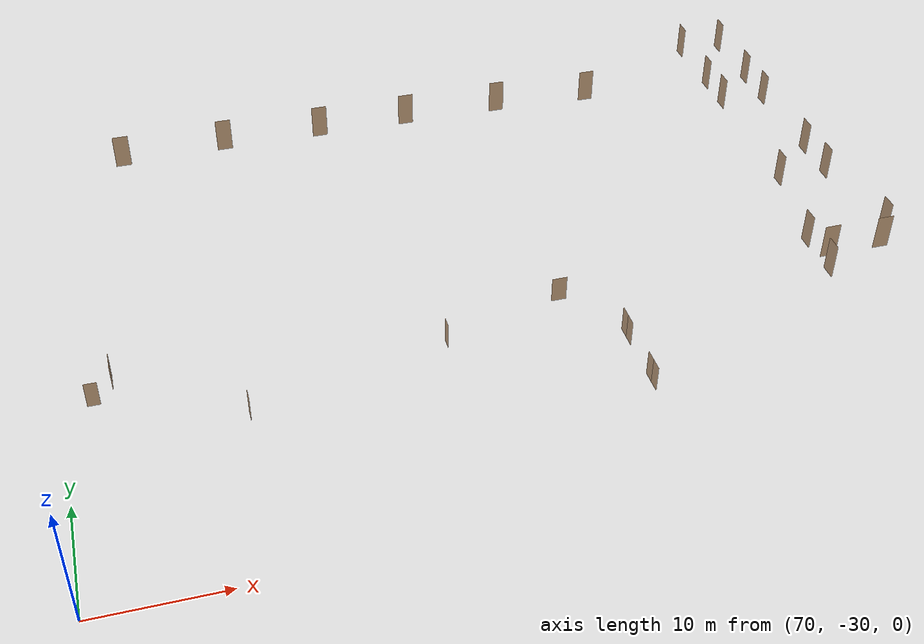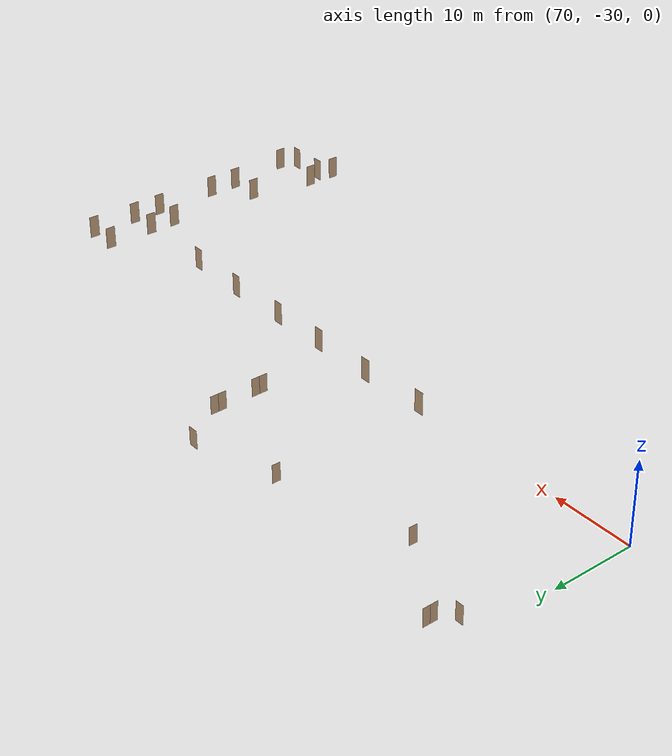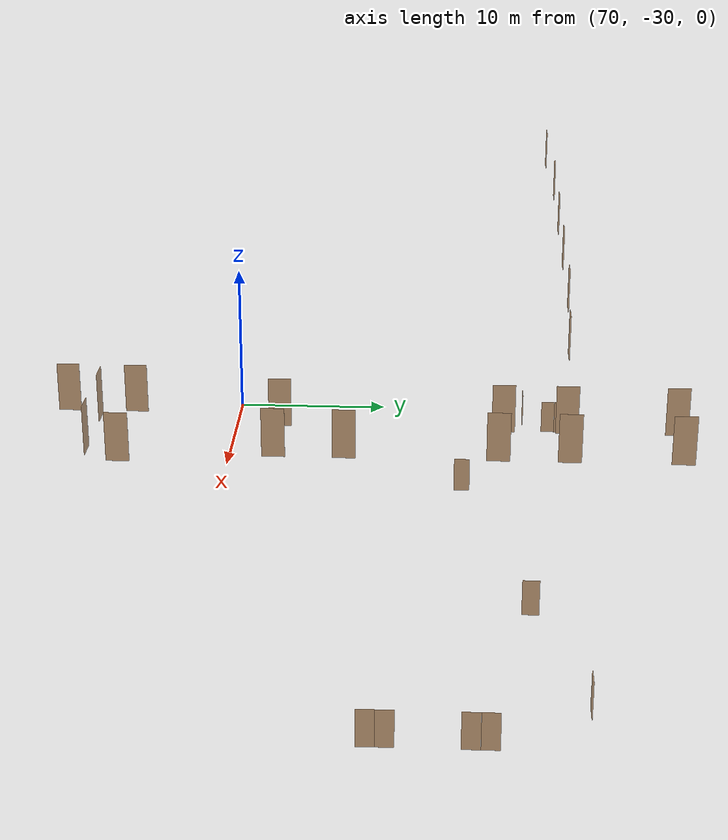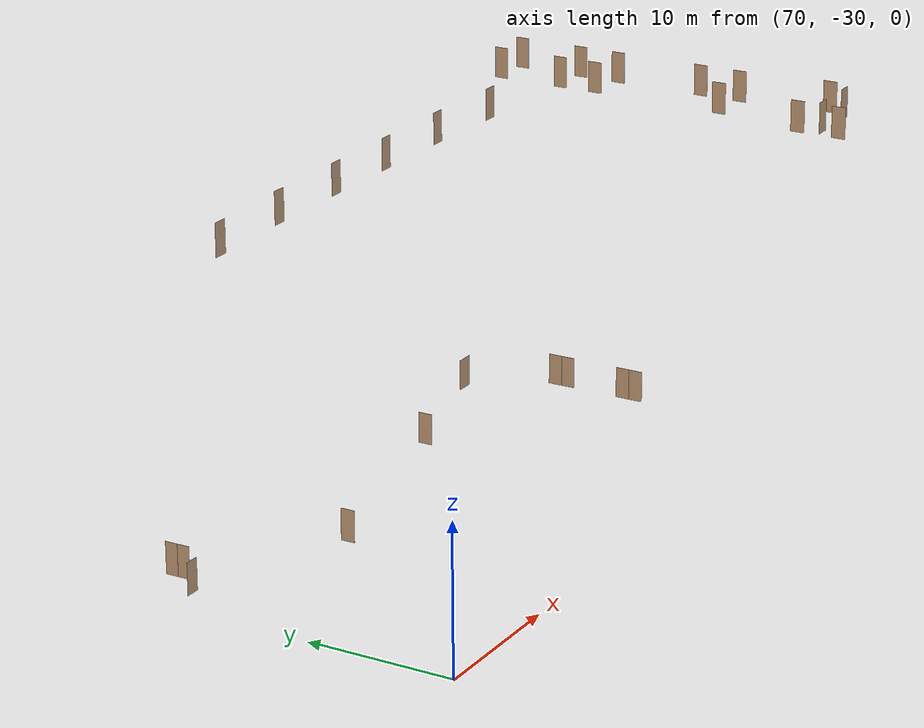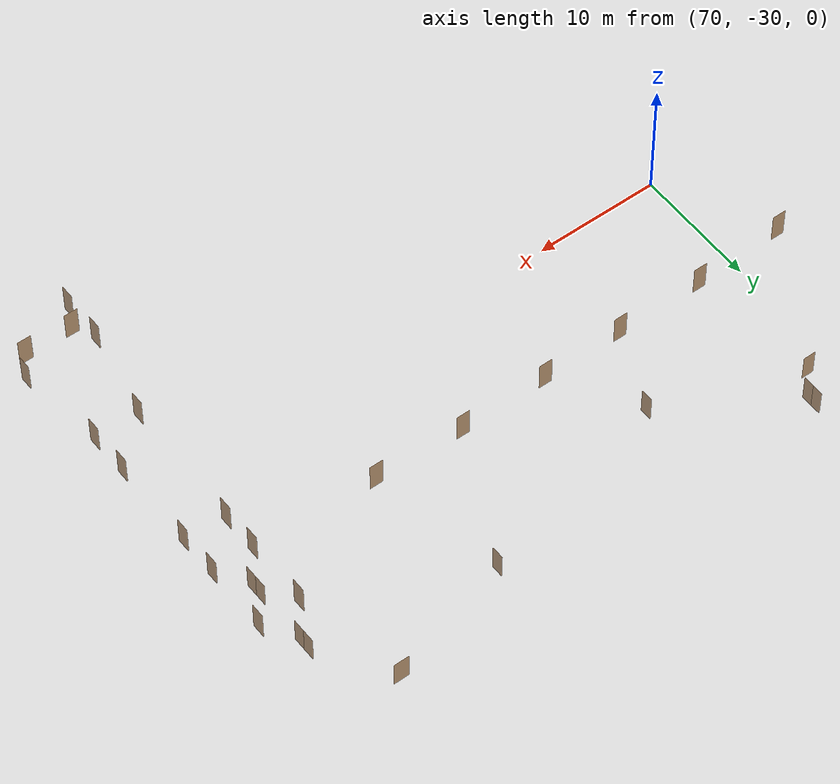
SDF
<sdf version="1.7">
 <world name="sim_world">
  <model name="l1_door6">
   <pose>72.2 -10.25 0.0 0 0 3.141592653589793</pose>
   <plugin name="door" filename="libdoor.so">
    <v_max_door>0.5</v_max_door>
    <a_max_door>0.3</a_max_door>
    <a_nom_door>0.15</a_nom_door>
    <dx_min_door>0.01</dx_min_door>
    <f_max_door>500.0</f_max_door>
    <door name="l1_door6" type="SwingDoor" left_joint_name="empty_joint" right_joint_name="right_joint"/>
   </plugin>
   <link name="right">
    <pose>0 0 1.11 0 0 0</pose>
    <visual name="right_visual">
     <geometry><box><size>0.99 0.03 2.2</size></box></geometry>
     <material>
      <ambient>0.5 0.25 0 0.6</ambient>
      <diffuse>0.5 0.25 0 0.6</diffuse>
      <pbr><metal><metalness>0.0</metalness></metal></pbr>
     </material>
    </visual>
    <collision name="right_collision">
     <geometry><box><size>0.99 0.03 2.2</size></box></geometry>
     <surface><contact><collide_bitmask>0x02</collide_bitmask></contact></surface>
    </collision>
    <inertial>
     <mass>50.0</mass>
     <inertia><ixx>20.17041666666667</ixx><iyy>24.250416666666673</iyy><izz>4.0875</izz></inertia>
    </inertial>
   </link>
   <joint name="right_joint" type="revolute">
    <parent>world</parent>
    <child>right</child>
    <axis><xyz>0 0 1</xyz><limit><lower>0</lower><upper>1.57</upper></limit></axis>
    <pose>0.5 0 0 0 0 0</pose>
   </joint>
  </model>
  <model name="l1_door7">
   <pose>73.7 -8.125 0.0 0 0 -1.5707963267948966</pose>
   <link name="right">
    <pose>-0.4375 0 1.11 0 0 0</pose>
    <visual name="right_visual">
     <geometry><box><size>0.865 0.03 2.2</size></box></geometry>
     <material>
      <ambient>0.5 0.25 0 0.6</ambient>
      <diffuse>0.5 0.25 0 0.6</diffuse>
      <pbr><metal><metalness>0.0</metalness></metal></pbr>
     </material>
    </visual>
    <collision name="right_collision">
     <geometry><box><size>0.865 0.03 2.2</size></box></geometry>
     <surface><contact><collide_bitmask>0x02</collide_bitmask></contact></surface>
    </collision>
    <inertial>
     <mass>50.0</mass>
     <inertia><ixx>20.17041666666667</ixx><iyy>23.284270833333338</iyy><izz>3.121354166666667</izz></inertia>
    </inertial>
   </link>
   <joint name="right_joint" type="revolute">
    <parent>world</parent>
    <child>right</child>
    <axis><xyz>0 0 1</xyz><limit><lower>0</lower><upper>1.57</upper></limit></axis>
    <pose>-0.4375 0 0 0 0 0</pose>
   </joint>
   <link name="left">
    <pose>0.4375 0 1.11 0 0 0</pose>
    <visual name="left_visual">
     <geometry><box><size>0.865 0.03 2.2</size></box></geometry>
     <material>
      <ambient>0.5 0.25 0 0.6</ambient>
      <diffuse>0.5 0.25 0 0.6</diffuse>
      <pbr><metal><metalness>0.0</metalness></metal></pbr>
     </material>
    </visual>
    <collision name="left_collision">
     <geometry><box><size>0.865 0.03 2.2</size></box></geometry>
     <surface><contact><collide_bitmask>0x02</collide_bitmask></contact></surface>
    </collision>
    <inertial>
     <mass>50.0</mass>
     <inertia><ixx>20.17041666666667</ixx><iyy>23.284270833333338</iyy><izz>3.121354166666667</izz></inertia>
    </inertial>
   </link>
   <joint name="left_joint" type="revolute">
    <parent>world</parent>
    <child>left</child>
    <axis><xyz>0 0 1</xyz><limit><lower>-1.57</lower><upper>0</upper></limit></axis>
    <pose>0.4375 0 0 0 0 0</pose>
   </joint>
   <plugin name="door" filename="libdoor.so">
    <v_max_door>0.5</v_max_door>
    <a_max_door>0.3</a_max_door>
    <a_nom_door>0.15</a_nom_door>
    <dx_min_door>0.01</dx_min_door>
    <f_max_door>500.0</f_max_door>
    <door name="l1_door7" type="DoubleSwingDoor" left_joint_name="left_joint" right_joint_name="right_joint"/>
   </plugin>
  </model>
  <model name="l1_door3">
   <pose>109.47500000000001 -7.5 0.0 0 0 0.0</pose>
   <plugin name="door" filename="libdoor.so">
    <v_max_door>0.5</v_max_door>
    <a_max_door>0.3</a_max_door>
    <a_nom_door>0.15</a_nom_door>
    <dx_min_door>0.01</dx_min_door>
    <f_max_door>500.0</f_max_door>
    <door name="l1_door3" type="SwingDoor" left_joint_name="left_joint" right_joint_name="empty_joint"/>
   </plugin>
   <link name="left">
    <pose>0 0 1.11 0 0 0</pose>
    <visual name="left_visual">
     <geometry><box><size>1.24 0.03 2.2</size></box></geometry>
     <material>
      <ambient>0.5 0.25 0 0.6</ambient>
      <diffuse>0.5 0.25 0 0.6</diffuse>
      <pbr><metal><metalness>0.0</metalness></metal></pbr>
     </material>
    </visual>
    <collision name="left_collision">
     <geometry><box><size>1.24 0.03 2.2</size></box></geometry>
     <surface><contact><collide_bitmask>0x02</collide_bitmask></contact></surface>
    </collision>
    <inertial>
     <mass>50.0</mass>
     <inertia><ixx>20.17041666666667</ixx><iyy>26.57333333333334</iyy><izz>6.410416666666667</izz></inertia>
    </inertial>
   </link>
   <joint name="left_joint" type="revolute">
    <parent>world</parent>
    <child>left</child>
    <axis><xyz>0 0 1</xyz><limit><lower>-1.57</lower><upper>0</upper></limit></axis>
    <pose>0.625 0 0 0 0 0</pose>
   </joint>
  </model>
  <model name="entrance_2">
   <pose>113.15 -13.25 0.0 0 0 1.5707963267948966</pose>
   <link name="left">
    <pose>-0.5 0 1.11 0 0 0</pose>
    <visual name="left_visual">
     <geometry><box><size>0.99 0.03 2.2</size></box></geometry>
     <material>
      <ambient>0.5 0.25 0 0.6</ambient>
      <diffuse>0.5 0.25 0 0.6</diffuse>
      <pbr><metal><metalness>0.0</metalness></metal></pbr>
     </material>
    </visual>
    <collision name="left_collision">
     <geometry><box><size>0.99 0.03 2.2</size></box></geometry>
     <surface><contact><collide_bitmask>0x02</collide_bitmask></contact></surface>
    </collision>
    <inertial>
     <mass>50.0</mass>
     <inertia><ixx>20.17041666666667</ixx><iyy>24.250416666666673</iyy><izz>4.0875</izz></inertia>
    </inertial>
   </link>
   <joint name="left_joint" type="prismatic">
    <parent>world</parent>
    <child>left</child>
    <axis><xyz>1 0 0</xyz><limit><lower>-1.0</lower><upper>0.0</upper><effort>500.0</effort></limit></axis>
   </joint>
   <link name="right">
    <pose>0.5 0 1.11 0 0 0</pose>
    <visual name="right_visual">
     <geometry><box><size>0.99 0.03 2.2</size></box></geometry>
     <material>
      <ambient>0.5 0.25 0 0.6</ambient>
      <diffuse>0.5 0.25 0 0.6</diffuse>
      <pbr><metal><metalness>0.0</metalness></metal></pbr>
     </material>
    </visual>
    <collision name="right_collision">
     <geometry><box><size>0.99 0.03 2.2</size></box></geometry>
     <surface><contact><collide_bitmask>0x02</collide_bitmask></contact></surface>
    </collision>
    <inertial>
     <mass>50.0</mass>
     <inertia><ixx>20.17041666666667</ixx><iyy>24.250416666666673</iyy><izz>4.0875</izz></inertia>
    </inertial>
   </link>
   <joint name="right_joint" type="prismatic">
    <parent>world</parent>
    <child>right</child>
    <axis><xyz>1 0 0</xyz><limit><lower>0.0</lower><upper>1.0</upper><effort>500.0</effort></limit></axis>
   </joint>
   <plugin name="door" filename="libdoor.so">
    <v_max_door>0.2</v_max_door>
    <a_max_door>0.2</a_max_door>
    <a_nom_door>0.08</a_nom_door>
    <dx_min_door>0.001</dx_min_door>
    <f_max_door>100.0</f_max_door>
    <door name="entrance_2" type="DoubleSlidingDoor" left_joint_name="left_joint" right_joint_name="right_joint"/>
   </plugin>
  </model>
  <model name="entrance_1">
   <pose>113.15 -18.6 0.0 0 0 1.5707963267948966</pose>
   <link name="left">
    <pose>-0.5 0 1.11 0 0 0</pose>
    <visual name="left_visual">
     <geometry><box><size>0.99 0.03 2.2</size></box></geometry>
     <material>
      <ambient>0.5 0.25 0 0.6</ambient>
      <diffuse>0.5 0.25 0 0.6</diffuse>
      <pbr><metal><metalness>0.0</metalness></metal></pbr>
     </material>
    </visual>
    <collision name="left_collision">
     <geometry><box><size>0.99 0.03 2.2</size></box></geometry>
     <surface><contact><collide_bitmask>0x02</collide_bitmask></contact></surface>
    </collision>
    <inertial>
     <mass>50.0</mass>
     <inertia><ixx>20.17041666666667</ixx><iyy>24.250416666666673</iyy><izz>4.0875</izz></inertia>
    </inertial>
   </link>
   <joint name="left_joint" type="prismatic">
    <parent>world</parent>
    <child>left</child>
    <axis><xyz>1 0 0</xyz><limit><lower>-1.0</lower><upper>0.0</upper><effort>500.0</effort></limit></axis>
   </joint>
   <link name="right">
    <pose>0.5 0 1.11 0 0 0</pose>
    <visual name="right_visual">
     <geometry><box><size>0.99 0.03 2.2</size></box></geometry>
     <material>
      <ambient>0.5 0.25 0 0.6</ambient>
      <diffuse>0.5 0.25 0 0.6</diffuse>
      <pbr><metal><metalness>0.0</metalness></metal></pbr>
     </material>
    </visual>
    <collision name="right_collision">
     <geometry><box><size>0.99 0.03 2.2</size></box></geometry>
     <surface><contact><collide_bitmask>0x02</collide_bitmask></contact></surface>
    </collision>
    <inertial>
     <mass>50.0</mass>
     <inertia><ixx>20.17041666666667</ixx><iyy>24.250416666666673</iyy><izz>4.0875</izz></inertia>
    </inertial>
   </link>
   <joint name="right_joint" type="prismatic">
    <parent>world</parent>
    <child>right</child>
    <axis><xyz>1 0 0</xyz><limit><lower>0.0</lower><upper>1.0</upper><effort>500.0</effort></limit></axis>
   </joint>
   <plugin name="door" filename="libdoor.so">
    <v_max_door>0.2</v_max_door>
    <a_max_door>0.2</a_max_door>
    <a_nom_door>0.08</a_nom_door>
    <dx_min_door>0.001</dx_min_door>
    <f_max_door>100.0</f_max_door>
    <door name="entrance_1" type="DoubleSlidingDoor" left_joint_name="left_joint" right_joint_name="right_joint"/>
   </plugin>
  </model>
  <model name="l1_door5">
   <pose>99.30000000000001 -10.4 0.0 0 0 1.5707963267948966</pose>
   <plugin name="door" filename="libdoor.so">
    <v_max_door>0.5</v_max_door>
    <a_max_door>0.3</a_max_door>
    <a_nom_door>0.15</a_nom_door>
    <dx_min_door>0.01</dx_min_door>
    <f_max_door>500.0</f_max_door>
    <door name="l1_door5" type="SwingDoor" left_joint_name="left_joint" right_joint_name="empty_joint"/>
   </plugin>
   <link name="left">
    <pose>0 0 1.11 0 0 0</pose>
    <visual name="left_visual">
     <geometry><box><size>0.99 0.03 2.2</size></box></geometry>
     <material>
      <ambient>0.5 0.25 0 0.6</ambient>
      <diffuse>0.5 0.25 0 0.6</diffuse>
      <pbr><metal><metalness>0.0</metalness></metal></pbr>
     </material>
    </visual>
    <collision name="left_collision">
     <geometry><box><size>0.99 0.03 2.2</size></box></geometry>
     <surface><contact><collide_bitmask>0x02</collide_bitmask></contact></surface>
    </collision>
    <inertial>
     <mass>50.0</mass>
     <inertia><ixx>20.17041666666667</ixx><iyy>24.250416666666673</iyy><izz>4.0875</izz></inertia>
    </inertial>
   </link>
   <joint name="left_joint" type="revolute">
    <parent>world</parent>
    <child>left</child>
    <axis><xyz>0 0 1</xyz><limit><lower>-1.57</lower><upper>0</upper></limit></axis>
    <pose>0.5 0 0 0 0 0</pose>
   </joint>
  </model>
  <model name="restroom_cleaning_door">
   <pose>83.25 -14.4 0.0 0 0 -1.5707963267948966</pose>
   <plugin name="door" filename="libdoor.so">
    <v_max_door>0.5</v_max_door>
    <a_max_door>0.3</a_max_door>
    <a_nom_door>0.15</a_nom_door>
    <dx_min_door>0.01</dx_min_door>
    <f_max_door>500.0</f_max_door>
    <door name="restroom_cleaning_door" type="SwingDoor" left_joint_name="left_joint" right_joint_name="empty_joint"/>
   </plugin>
   <link name="left">
    <pose>0 0 1.11 0 0 0</pose>
    <visual name="left_visual">
     <geometry><box><size>0.99 0.03 2.2</size></box></geometry>
     <material>
      <ambient>0.5 0.25 0 0.6</ambient>
      <diffuse>0.5 0.25 0 0.6</diffuse>
      <pbr><metal><metalness>0.0</metalness></metal></pbr>
     </material>
    </visual>
    <collision name="left_collision">
     <geometry><box><size>0.99 0.03 2.2</size></box></geometry>
     <surface><contact><collide_bitmask>0x02</collide_bitmask></contact></surface>
    </collision>
    <inertial>
     <mass>50.0</mass>
     <inertia><ixx>20.17041666666667</ixx><iyy>24.250416666666673</iyy><izz>4.0875</izz></inertia>
    </inertial>
   </link>
   <joint name="left_joint" type="revolute">
    <parent>world</parent>
    <child>left</child>
    <axis><xyz>0 0 1</xyz><limit><lower>-1.57</lower><upper>0</upper></limit></axis>
    <pose>0.5 0 0 0 0 0</pose>
   </joint>
  </model>
  <model name="room24_door">
   <pose>77.45 -9.5 20.0 0 0 3.141592653589793</pose>
   <plugin name="door" filename="libdoor.so">
    <v_max_door>0.5</v_max_door>
    <a_max_door>0.3</a_max_door>
    <a_nom_door>0.15</a_nom_door>
    <dx_min_door>0.01</dx_min_door>
    <f_max_door>500.0</f_max_door>
    <door name="room24_door" type="SwingDoor" left_joint_name="left_joint" right_joint_name="empty_joint"/>
   </plugin>
   <link name="left">
    <pose>0 0 1.11 0 0 0</pose>
    <visual name="left_visual">
     <geometry><box><size>0.99 0.03 2.2</size></box></geometry>
     <material>
      <ambient>0.5 0.25 0 0.6</ambient>
      <diffuse>0.5 0.25 0 0.6</diffuse>
      <pbr><metal><metalness>0.0</metalness></metal></pbr>
     </material>
    </visual>
    <collision name="left_collision">
     <geometry><box><size>0.99 0.03 2.2</size></box></geometry>
     <surface><contact><collide_bitmask>0x02</collide_bitmask></contact></surface>
    </collision>
    <inertial>
     <mass>50.0</mass>
     <inertia><ixx>20.17041666666667</ixx><iyy>24.250416666666673</iyy><izz>4.0875</izz></inertia>
    </inertial>
   </link>
   <joint name="left_joint" type="revolute">
    <parent>world</parent>
    <child>left</child>
    <axis><xyz>0 0 1</xyz><limit><lower>-1.57</lower><upper>0</upper></limit></axis>
    <pose>0.5 0 0 0 0 0</pose>
   </joint>
  </model>
  <model name="room25_door">
   <pose>84.2 -9.25 20.0 0 0 0.0</pose>
   <plugin name="door" filename="libdoor.so">
    <v_max_door>0.5</v_max_door>
    <a_max_door>0.3</a_max_door>
    <a_nom_door>0.15</a_nom_door>
    <dx_min_door>0.01</dx_min_door>
    <f_max_door>500.0</f_max_door>
    <door name="room25_door" type="SwingDoor" left_joint_name="empty_joint" right_joint_name="right_joint"/>
   </plugin>
   <link name="right">
    <pose>0 0 1.11 0 0 0</pose>
    <visual name="right_visual">
     <geometry><box><size>0.99 0.03 2.2</size></box></geometry>
     <material>
      <ambient>0.5 0.25 0 0.6</ambient>
      <diffuse>0.5 0.25 0 0.6</diffuse>
      <pbr><metal><metalness>0.0</metalness></metal></pbr>
     </material>
    </visual>
    <collision name="right_collision">
     <geometry><box><size>0.99 0.03 2.2</size></box></geometry>
     <surface><contact><collide_bitmask>0x02</collide_bitmask></contact></surface>
    </collision>
    <inertial>
     <mass>50.0</mass>
     <inertia><ixx>20.17041666666667</ixx><iyy>24.250416666666673</iyy><izz>4.0875</izz></inertia>
    </inertial>
   </link>
   <joint name="right_joint" type="revolute">
    <parent>world</parent>
    <child>right</child>
    <axis><xyz>0 0 1</xyz><limit><lower>0</lower><upper>1.57</upper></limit></axis>
    <pose>0.5 0 0 0 0 0</pose>
   </joint>
  </model>
  <model name="room26_door">
   <pose>90.7 -9.25 20.0 0 0 3.141592653589793</pose>
   <plugin name="door" filename="libdoor.so">
    <v_max_door>0.5</v_max_door>
    <a_max_door>0.3</a_max_door>
    <a_nom_door>0.15</a_nom_door>
    <dx_min_door>0.01</dx_min_door>
    <f_max_door>500.0</f_max_door>
    <door name="room26_door" type="SwingDoor" left_joint_name="left_joint" right_joint_name="empty_joint"/>
   </plugin>
   <link name="left">
    <pose>0 0 1.11 0 0 0</pose>
    <visual name="left_visual">
     <geometry><box><size>0.99 0.03 2.2</size></box></geometry>
     <material>
      <ambient>0.5 0.25 0 0.6</ambient>
      <diffuse>0.5 0.25 0 0.6</diffuse>
      <pbr><metal><metalness>0.0</metalness></metal></pbr>
     </material>
    </visual>
    <collision name="left_collision">
     <geometry><box><size>0.99 0.03 2.2</size></box></geometry>
     <surface><contact><collide_bitmask>0x02</collide_bitmask></contact></surface>
    </collision>
    <inertial>
     <mass>50.0</mass>
     <inertia><ixx>20.17041666666667</ixx><iyy>24.250416666666673</iyy><izz>4.0875</izz></inertia>
    </inertial>
   </link>
   <joint name="left_joint" type="revolute">
    <parent>world</parent>
    <child>left</child>
    <axis><xyz>0 0 1</xyz><limit><lower>-1.57</lower><upper>0</upper></limit></axis>
    <pose>0.5 0 0 0 0 0</pose>
   </joint>
  </model>
  <model name="room27_door">
   <pose>96.7 -9.25 20.0 0 0 0.0</pose>
   <plugin name="door" filename="libdoor.so">
    <v_max_door>0.5</v_max_door>
    <a_max_door>0.3</a_max_door>
    <a_nom_door>0.15</a_nom_door>
    <dx_min_door>0.01</dx_min_door>
    <f_max_door>500.0</f_max_door>
    <door name="room27_door" type="SwingDoor" left_joint_name="empty_joint" right_joint_name="right_joint"/>
   </plugin>
   <link name="right">
    <pose>0 0 1.11 0 0 0</pose>
    <visual name="right_visual">
     <geometry><box><size>0.99 0.03 2.2</size></box></geometry>
     <material>
      <ambient>0.5 0.25 0 0.6</ambient>
      <diffuse>0.5 0.25 0 0.6</diffuse>
      <pbr><metal><metalness>0.0</metalness></metal></pbr>
     </material>
    </visual>
    <collision name="right_collision">
     <geometry><box><size>0.99 0.03 2.2</size></box></geometry>
     <surface><contact><collide_bitmask>0x02</collide_bitmask></contact></surface>
    </collision>
    <inertial>
     <mass>50.0</mass>
     <inertia><ixx>20.17041666666667</ixx><iyy>24.250416666666673</iyy><izz>4.0875</izz></inertia>
    </inertial>
   </link>
   <joint name="right_joint" type="revolute">
    <parent>world</parent>
    <child>right</child>
    <axis><xyz>0 0 1</xyz><limit><lower>0</lower><upper>1.57</upper></limit></axis>
    <pose>0.5 0 0 0 0 0</pose>
   </joint>
  </model>
  <model name="room28_door">
   <pose>103.2 -9.25 20.0 0 0 3.141592653589793</pose>
   <plugin name="door" filename="libdoor.so">
    <v_max_door>0.5</v_max_door>
    <a_max_door>0.3</a_max_door>
    <a_nom_door>0.15</a_nom_door>
    <dx_min_door>0.01</dx_min_door>
    <f_max_door>500.0</f_max_door>
    <door name="room28_door" type="SwingDoor" left_joint_name="left_joint" right_joint_name="empty_joint"/>
   </plugin>
   <link name="left">
    <pose>0 0 1.11 0 0 0</pose>
    <visual name="left_visual">
     <geometry><box><size>0.99 0.03 2.2</size></box></geometry>
     <material>
      <ambient>0.5 0.25 0 0.6</ambient>
      <diffuse>0.5 0.25 0 0.6</diffuse>
      <pbr><metal><metalness>0.0</metalness></metal></pbr>
     </material>
    </visual>
    <collision name="left_collision">
     <geometry><box><size>0.99 0.03 2.2</size></box></geometry>
     <surface><contact><collide_bitmask>0x02</collide_bitmask></contact></surface>
    </collision>
    <inertial>
     <mass>50.0</mass>
     <inertia><ixx>20.17041666666667</ixx><iyy>24.250416666666673</iyy><izz>4.0875</izz></inertia>
    </inertial>
   </link>
   <joint name="left_joint" type="revolute">
    <parent>world</parent>
    <child>left</child>
    <axis><xyz>0 0 1</xyz><limit><lower>-1.57</lower><upper>0</upper></limit></axis>
    <pose>0.5 0 0 0 0 0</pose>
   </joint>
  </model>
  <model name="room29_door">
   <pose>109.7 -9.5 20.0 0 0 0.0</pose>
   <plugin name="door" filename="libdoor.so">
    <v_max_door>0.5</v_max_door>
    <a_max_door>0.3</a_max_door>
    <a_nom_door>0.15</a_nom_door>
    <dx_min_door>0.01</dx_min_door>
    <f_max_door>500.0</f_max_door>
    <door name="room29_door" type="SwingDoor" left_joint_name="empty_joint" right_joint_name="right_joint"/>
   </plugin>
   <link name="right">
    <pose>0 0 1.11 0 0 0</pose>
    <visual name="right_visual">
     <geometry><box><size>0.99 0.03 2.2</size></box></geometry>
     <material>
      <ambient>0.5 0.25 0 0.6</ambient>
      <diffuse>0.5 0.25 0 0.6</diffuse>
      <pbr><metal><metalness>0.0</metalness></metal></pbr>
     </material>
    </visual>
    <collision name="right_collision">
     <geometry><box><size>0.99 0.03 2.2</size></box></geometry>
     <surface><contact><collide_bitmask>0x02</collide_bitmask></contact></surface>
    </collision>
    <inertial>
     <mass>50.0</mass>
     <inertia><ixx>20.17041666666667</ixx><iyy>24.250416666666673</iyy><izz>4.0875</izz></inertia>
    </inertial>
   </link>
   <joint name="right_joint" type="revolute">
    <parent>world</parent>
    <child>right</child>
    <axis><xyz>0 0 1</xyz><limit><lower>0</lower><upper>1.57</upper></limit></axis>
    <pose>0.5 0 0 0 0 0</pose>
   </joint>
  </model>
  <model name="stair2_door">
   <pose>118.7 -10.0 20.0 0 0 1.5707963267948966</pose>
   <plugin name="door" filename="libdoor.so">
    <v_max_door>0.5</v_max_door>
    <a_max_door>0.3</a_max_door>
    <a_nom_door>0.15</a_nom_door>
    <dx_min_door>0.01</dx_min_door>
    <f_max_door>500.0</f_max_door>
    <door name="stair2_door" type="SwingDoor" left_joint_name="left_joint" right_joint_name="empty_joint"/>
   </plugin>
   <link name="left">
    <pose>0 0 1.11 0 0 0</pose>
    <visual name="left_visual">
     <geometry><box><size>0.99 0.03 2.2</size></box></geometry>
     <material>
      <ambient>0.5 0.25 0 0.6</ambient>
      <diffuse>0.5 0.25 0 0.6</diffuse>
      <pbr><metal><metalness>0.0</metalness></metal></pbr>
     </material>
    </visual>
    <collision name="left_collision">
     <geometry><box><size>0.99 0.03 2.2</size></box></geometry>
     <surface><contact><collide_bitmask>0x02</collide_bitmask></contact></surface>
    </collision>
    <inertial>
     <mass>50.0</mass>
     <inertia><ixx>20.17041666666667</ixx><iyy>24.250416666666673</iyy><izz>4.0875</izz></inertia>
    </inertial>
   </link>
   <joint name="left_joint" type="revolute">
    <parent>world</parent>
    <child>left</child>
    <axis><xyz>0 0 1</xyz><limit><lower>-1.57</lower><upper>0</upper></limit></axis>
    <pose>0.5 0 0 0 0 0</pose>
   </joint>
  </model>
  <model name="door9">
   <pose>118.7 -12.75 20.0 0 0 -1.5707963267948966</pose>
   <plugin name="door" filename="libdoor.so">
    <v_max_door>0.5</v_max_door>
    <a_max_door>0.3</a_max_door>
    <a_nom_door>0.15</a_nom_door>
    <dx_min_door>0.01</dx_min_door>
    <f_max_door>500.0</f_max_door>
    <door name="door9" type="SwingDoor" left_joint_name="left_joint" right_joint_name="empty_joint"/>
   </plugin>
   <link name="left">
    <pose>0 0 1.11 0 0 0</pose>
    <visual name="left_visual">
     <geometry><box><size>0.99 0.03 2.2</size></box></geometry>
     <material>
      <ambient>0.5 0.25 0 0.6</ambient>
      <diffuse>0.5 0.25 0 0.6</diffuse>
      <pbr><metal><metalness>0.0</metalness></metal></pbr>
     </material>
    </visual>
    <collision name="left_collision">
     <geometry><box><size>0.99 0.03 2.2</size></box></geometry>
     <surface><contact><collide_bitmask>0x02</collide_bitmask></contact></surface>
    </collision>
    <inertial>
     <mass>50.0</mass>
     <inertia><ixx>20.17041666666667</ixx><iyy>24.250416666666673</iyy><izz>4.0875</izz></inertia>
    </inertial>
   </link>
   <joint name="left_joint" type="revolute">
    <parent>world</parent>
    <child>left</child>
    <axis><xyz>0 0 1</xyz><limit><lower>-1.57</lower><upper>0</upper></limit></axis>
    <pose>0.5 0 0 0 0 0</pose>
   </joint>
  </model>
  <model name="room30_door">
   <pose>118.7 -5.25 20.0 0 0 -1.5707963267948966</pose>
   <plugin name="door" filename="libdoor.so">
    <v_max_door>0.5</v_max_door>
    <a_max_door>0.3</a_max_door>
    <a_nom_door>0.15</a_nom_door>
    <dx_min_door>0.01</dx_min_door>
    <f_max_door>500.0</f_max_door>
    <door name="room30_door" type="SwingDoor" left_joint_name="empty_joint" right_joint_name="right_joint"/>
   </plugin>
   <link name="right">
    <pose>0 0 1.11 0 0 0</pose>
    <visual name="right_visual">
     <geometry><box><size>0.99 0.03 2.2</size></box></geometry>
     <material>
      <ambient>0.5 0.25 0 0.6</ambient>
      <diffuse>0.5 0.25 0 0.6</diffuse>
      <pbr><metal><metalness>0.0</metalness></metal></pbr>
     </material>
    </visual>
    <collision name="right_collision">
     <geometry><box><size>0.99 0.03 2.2</size></box></geometry>
     <surface><contact><collide_bitmask>0x02</collide_bitmask></contact></surface>
    </collision>
    <inertial>
     <mass>50.0</mass>
     <inertia><ixx>20.17041666666667</ixx><iyy>24.250416666666673</iyy><izz>4.0875</izz></inertia>
    </inertial>
   </link>
   <joint name="right_joint" type="revolute">
    <parent>world</parent>
    <child>right</child>
    <axis><xyz>0 0 1</xyz><limit><lower>0</lower><upper>1.57</upper></limit></axis>
    <pose>0.5 0 0 0 0 0</pose>
   </joint>
  </model>
  <model name="room31_door">
   <pose>121.7 -5.25 20.0 0 0 -1.5707963267948966</pose>
   <plugin name="door" filename="libdoor.so">
    <v_max_door>0.5</v_max_door>
    <a_max_door>0.3</a_max_door>
    <a_nom_door>0.15</a_nom_door>
    <dx_min_door>0.01</dx_min_door>
    <f_max_door>500.0</f_max_door>
    <door name="room31_door" type="SwingDoor" left_joint_name="left_joint" right_joint_name="empty_joint"/>
   </plugin>
   <link name="left">
    <pose>0 0 1.11 0 0 0</pose>
    <visual name="left_visual">
     <geometry><box><size>0.99 0.03 2.2</size></box></geometry>
     <material>
      <ambient>0.5 0.25 0 0.6</ambient>
      <diffuse>0.5 0.25 0 0.6</diffuse>
      <pbr><metal><metalness>0.0</metalness></metal></pbr>
     </material>
    </visual>
    <collision name="left_collision">
     <geometry><box><size>0.99 0.03 2.2</size></box></geometry>
     <surface><contact><collide_bitmask>0x02</collide_bitmask></contact></surface>
    </collision>
    <inertial>
     <mass>50.0</mass>
     <inertia><ixx>20.17041666666667</ixx><iyy>24.250416666666673</iyy><izz>4.0875</izz></inertia>
    </inertial>
   </link>
   <joint name="left_joint" type="revolute">
    <parent>world</parent>
    <child>left</child>
    <axis><xyz>0 0 1</xyz><limit><lower>-1.57</lower><upper>0</upper></limit></axis>
    <pose>0.5 0 0 0 0 0</pose>
   </joint>
  </model>
  <model name="room32_door">
   <pose>121.7 -10.0 20.0 0 0 -1.5707963267948966</pose>
   <plugin name="door" filename="libdoor.so">
    <v_max_door>0.5</v_max_door>
    <a_max_door>0.3</a_max_door>
    <a_nom_door>0.15</a_nom_door>
    <dx_min_door>0.01</dx_min_door>
    <f_max_door>500.0</f_max_door>
    <door name="room32_door" type="SwingDoor" left_joint_name="left_joint" right_joint_name="empty_joint"/>
   </plugin>
   <link name="left">
    <pose>0 0 1.11 0 0 0</pose>
    <visual name="left_visual">
     <geometry><box><size>0.99 0.03 2.2</size></box></geometry>
     <material>
      <ambient>0.5 0.25 0 0.6</ambient>
      <diffuse>0.5 0.25 0 0.6</diffuse>
      <pbr><metal><metalness>0.0</metalness></metal></pbr>
     </material>
    </visual>
    <collision name="left_collision">
     <geometry><box><size>0.99 0.03 2.2</size></box></geometry>
     <surface><contact><collide_bitmask>0x02</collide_bitmask></contact></surface>
    </collision>
    <inertial>
     <mass>50.0</mass>
     <inertia><ixx>20.17041666666667</ixx><iyy>24.250416666666673</iyy><izz>4.0875</izz></inertia>
    </inertial>
   </link>
   <joint name="left_joint" type="revolute">
    <parent>world</parent>
    <child>left</child>
    <axis><xyz>0 0 1</xyz><limit><lower>-1.57</lower><upper>0</upper></limit></axis>
    <pose>0.5 0 0 0 0 0</pose>
   </joint>
  </model>
  <model name="room33_door">
   <pose>121.7 -13.0 20.0 0 0 1.5707963267948966</pose>
   <plugin name="door" filename="libdoor.so">
    <v_max_door>0.5</v_max_door>
    <a_max_door>0.3</a_max_door>
    <a_nom_door>0.15</a_nom_door>
    <dx_min_door>0.01</dx_min_door>
    <f_max_door>500.0</f_max_door>
    <door name="room33_door" type="SwingDoor" left_joint_name="empty_joint" right_joint_name="right_joint"/>
   </plugin>
   <link name="right">
    <pose>0 0 1.11 0 0 0</pose>
    <visual name="right_visual">
     <geometry><box><size>0.99 0.03 2.2</size></box></geometry>
     <material>
      <ambient>0.5 0.25 0 0.6</ambient>
      <diffuse>0.5 0.25 0 0.6</diffuse>
      <pbr><metal><metalness>0.0</metalness></metal></pbr>
     </material>
    </visual>
    <collision name="right_collision">
     <geometry><box><size>0.99 0.03 2.2</size></box></geometry>
     <surface><contact><collide_bitmask>0x02</collide_bitmask></contact></surface>
    </collision>
    <inertial>
     <mass>50.0</mass>
     <inertia><ixx>20.17041666666667</ixx><iyy>24.250416666666673</iyy><izz>4.0875</izz></inertia>
    </inertial>
   </link>
   <joint name="right_joint" type="revolute">
    <parent>world</parent>
    <child>right</child>
    <axis><xyz>0 0 1</xyz><limit><lower>0</lower><upper>1.57</upper></limit></axis>
    <pose>0.5 0 0 0 0 0</pose>
   </joint>
  </model>
  <model name="room34_door">
   <pose>121.7 -19.5 20.0 0 0 -1.5707963267948966</pose>
   <plugin name="door" filename="libdoor.so">
    <v_max_door>0.5</v_max_door>
    <a_max_door>0.3</a_max_door>
    <a_nom_door>0.15</a_nom_door>
    <dx_min_door>0.01</dx_min_door>
    <f_max_door>500.0</f_max_door>
    <door name="room34_door" type="SwingDoor" left_joint_name="left_joint" right_joint_name="empty_joint"/>
   </plugin>
   <link name="left">
    <pose>0 0 1.11 0 0 0</pose>
    <visual name="left_visual">
     <geometry><box><size>0.99 0.03 2.2</size></box></geometry>
     <material>
      <ambient>0.5 0.25 0 0.6</ambient>
      <diffuse>0.5 0.25 0 0.6</diffuse>
      <pbr><metal><metalness>0.0</metalness></metal></pbr>
     </material>
    </visual>
    <collision name="left_collision">
     <geometry><box><size>0.99 0.03 2.2</size></box></geometry>
     <surface><contact><collide_bitmask>0x02</collide_bitmask></contact></surface>
    </collision>
    <inertial>
     <mass>50.0</mass>
     <inertia><ixx>20.17041666666667</ixx><iyy>24.250416666666673</iyy><izz>4.0875</izz></inertia>
    </inertial>
   </link>
   <joint name="left_joint" type="revolute">
    <parent>world</parent>
    <child>left</child>
    <axis><xyz>0 0 1</xyz><limit><lower>-1.57</lower><upper>0</upper></limit></axis>
    <pose>0.5 0 0 0 0 0</pose>
   </joint>
  </model>
  <model name="room35_door">
   <pose>121.7 -22.5 20.0 0 0 1.5707963267948966</pose>
   <plugin name="door" filename="libdoor.so">
    <v_max_door>0.5</v_max_door>
    <a_max_door>0.3</a_max_door>
    <a_nom_door>0.15</a_nom_door>
    <dx_min_door>0.01</dx_min_door>
    <f_max_door>500.0</f_max_door>
    <door name="room35_door" type="SwingDoor" left_joint_name="empty_joint" right_joint_name="right_joint"/>
   </plugin>
   <link name="right">
    <pose>0 0 1.11 0 0 0</pose>
    <visual name="right_visual">
     <geometry><box><size>0.99 0.03 2.2</size></box></geometry>
     <material>
      <ambient>0.5 0.25 0 0.6</ambient>
      <diffuse>0.5 0.25 0 0.6</diffuse>
      <pbr><metal><metalness>0.0</metalness></metal></pbr>
     </material>
    </visual>
    <collision name="right_collision">
     <geometry><box><size>0.99 0.03 2.2</size></box></geometry>
     <surface><contact><collide_bitmask>0x02</collide_bitmask></contact></surface>
    </collision>
    <inertial>
     <mass>50.0</mass>
     <inertia><ixx>20.17041666666667</ixx><iyy>24.250416666666673</iyy><izz>4.0875</izz></inertia>
    </inertial>
   </link>
   <joint name="right_joint" type="revolute">
    <parent>world</parent>
    <child>right</child>
    <axis><xyz>0 0 1</xyz><limit><lower>0</lower><upper>1.57</upper></limit></axis>
    <pose>0.5 0 0 0 0 0</pose>
   </joint>
  </model>
  <model name="room40_door">
   <pose>118.45 -22.5 20.0 0 0 1.5707963267948966</pose>
   <plugin name="door" filename="libdoor.so">
    <v_max_door>0.5</v_max_door>
    <a_max_door>0.3</a_max_door>
    <a_nom_door>0.15</a_nom_door>
    <dx_min_door>0.01</dx_min_door>
    <f_max_door>500.0</f_max_door>
    <door name="room40_door" type="SwingDoor" left_joint_name="left_joint" right_joint_name="empty_joint"/>
   </plugin>
   <link name="left">
    <pose>0 0 1.11 0 0 0</pose>
    <visual name="left_visual">
     <geometry><box><size>0.99 0.03 2.2</size></box></geometry>
     <material>
      <ambient>0.5 0.25 0 0.6</ambient>
      <diffuse>0.5 0.25 0 0.6</diffuse>
      <pbr><metal><metalness>0.0</metalness></metal></pbr>
     </material>
    </visual>
    <collision name="left_collision">
     <geometry><box><size>0.99 0.03 2.2</size></box></geometry>
     <surface><contact><collide_bitmask>0x02</collide_bitmask></contact></surface>
    </collision>
    <inertial>
     <mass>50.0</mass>
     <inertia><ixx>20.17041666666667</ixx><iyy>24.250416666666673</iyy><izz>4.0875</izz></inertia>
    </inertial>
   </link>
   <joint name="left_joint" type="revolute">
    <parent>world</parent>
    <child>left</child>
    <axis><xyz>0 0 1</xyz><limit><lower>-1.57</lower><upper>0</upper></limit></axis>
    <pose>0.5 0 0 0 0 0</pose>
   </joint>
  </model>
  <model name="room36_door">
   <pose>122.45 -29.0 20.0 0 0 -1.5707963267948966</pose>
   <plugin name="door" filename="libdoor.so">
    <v_max_door>0.5</v_max_door>
    <a_max_door>0.3</a_max_door>
    <a_nom_door>0.15</a_nom_door>
    <dx_min_door>0.01</dx_min_door>
    <f_max_door>500.0</f_max_door>
    <door name="room36_door" type="SwingDoor" left_joint_name="left_joint" right_joint_name="empty_joint"/>
   </plugin>
   <link name="left">
    <pose>0 0 1.11 0 0 0</pose>
    <visual name="left_visual">
     <geometry><box><size>0.99 0.03 2.2</size></box></geometry>
     <material>
      <ambient>0.5 0.25 0 0.6</ambient>
      <diffuse>0.5 0.25 0 0.6</diffuse>
      <pbr><metal><metalness>0.0</metalness></metal></pbr>
     </material>
    </visual>
    <collision name="left_collision">
     <geometry><box><size>0.99 0.03 2.2</size></box></geometry>
     <surface><contact><collide_bitmask>0x02</collide_bitmask></contact></surface>
    </collision>
    <inertial>
     <mass>50.0</mass>
     <inertia><ixx>20.17041666666667</ixx><iyy>24.250416666666673</iyy><izz>4.0875</izz></inertia>
    </inertial>
   </link>
   <joint name="left_joint" type="revolute">
    <parent>world</parent>
    <child>left</child>
    <axis><xyz>0 0 1</xyz><limit><lower>-1.57</lower><upper>0</upper></limit></axis>
    <pose>0.5 0 0 0 0 0</pose>
   </joint>
  </model>
  <model name="room39_door">
   <pose>117.2 -29.0 20.0 0 0 -1.5707963267948966</pose>
   <plugin name="door" filename="libdoor.so">
    <v_max_door>0.5</v_max_door>
    <a_max_door>0.3</a_max_door>
    <a_nom_door>0.15</a_nom_door>
    <dx_min_door>0.01</dx_min_door>
    <f_max_door>500.0</f_max_door>
    <door name="room39_door" type="SwingDoor" left_joint_name="empty_joint" right_joint_name="right_joint"/>
   </plugin>
   <link name="right">
    <pose>0 0 1.11 0 0 0</pose>
    <visual name="right_visual">
     <geometry><box><size>0.99 0.03 2.2</size></box></geometry>
     <material>
      <ambient>0.5 0.25 0 0.6</ambient>
      <diffuse>0.5 0.25 0 0.6</diffuse>
      <pbr><metal><metalness>0.0</metalness></metal></pbr>
     </material>
    </visual>
    <collision name="right_collision">
     <geometry><box><size>0.99 0.03 2.2</size></box></geometry>
     <surface><contact><collide_bitmask>0x02</collide_bitmask></contact></surface>
    </collision>
    <inertial>
     <mass>50.0</mass>
     <inertia><ixx>20.17041666666667</ixx><iyy>24.250416666666673</iyy><izz>4.0875</izz></inertia>
    </inertial>
   </link>
   <joint name="right_joint" type="revolute">
    <parent>world</parent>
    <child>right</child>
    <axis><xyz>0 0 1</xyz><limit><lower>0</lower><upper>1.57</upper></limit></axis>
    <pose>0.5 0 0 0 0 0</pose>
   </joint>
  </model>
  <model name="room37_door">
   <pose>121.45 -30.5 20.0 0 0 3.141592653589793</pose>
   <plugin name="door" filename="libdoor.so">
    <v_max_door>0.5</v_max_door>
    <a_max_door>0.3</a_max_door>
    <a_nom_door>0.15</a_nom_door>
    <dx_min_door>0.01</dx_min_door>
    <f_max_door>500.0</f_max_door>
    <door name="room37_door" type="SwingDoor" left_joint_name="left_joint" right_joint_name="empty_joint"/>
   </plugin>
   <link name="left">
    <pose>0 0 1.11 0 0 0</pose>
    <visual name="left_visual">
     <geometry><box><size>0.99 0.03 2.2</size></box></geometry>
     <material>
      <ambient>0.5 0.25 0 0.6</ambient>
      <diffuse>0.5 0.25 0 0.6</diffuse>
      <pbr><metal><metalness>0.0</metalness></metal></pbr>
     </material>
    </visual>
    <collision name="left_collision">
     <geometry><box><size>0.99 0.03 2.2</size></box></geometry>
     <surface><contact><collide_bitmask>0x02</collide_bitmask></contact></surface>
    </collision>
    <inertial>
     <mass>50.0</mass>
     <inertia><ixx>20.17041666666667</ixx><iyy>24.250416666666673</iyy><izz>4.0875</izz></inertia>
    </inertial>
   </link>
   <joint name="left_joint" type="revolute">
    <parent>world</parent>
    <child>left</child>
    <axis><xyz>0 0 1</xyz><limit><lower>-1.57</lower><upper>0</upper></limit></axis>
    <pose>0.5 0 0 0 0 0</pose>
   </joint>
  </model>
  <model name="room38_door">
   <pose>117.95 -30.5 20.0 0 0 3.141592653589793</pose>
   <plugin name="door" filename="libdoor.so">
    <v_max_door>0.5</v_max_door>
    <a_max_door>0.3</a_max_door>
    <a_nom_door>0.15</a_nom_door>
    <dx_min_door>0.01</dx_min_door>
    <f_max_door>500.0</f_max_door>
    <door name="room38_door" type="SwingDoor" left_joint_name="left_joint" right_joint_name="empty_joint"/>
   </plugin>
   <link name="left">
    <pose>0 0 1.11 0 0 0</pose>
    <visual name="left_visual">
     <geometry><box><size>0.99 0.03 2.2</size></box></geometry>
     <material>
      <ambient>0.5 0.25 0 0.6</ambient>
      <diffuse>0.5 0.25 0 0.6</diffuse>
      <pbr><metal><metalness>0.0</metalness></metal></pbr>
     </material>
    </visual>
    <collision name="left_collision">
     <geometry><box><size>0.99 0.03 2.2</size></box></geometry>
     <surface><contact><collide_bitmask>0x02</collide_bitmask></contact></surface>
    </collision>
    <inertial>
     <mass>50.0</mass>
     <inertia><ixx>20.17041666666667</ixx><iyy>24.250416666666673</iyy><izz>4.0875</izz></inertia>
    </inertial>
   </link>
   <joint name="left_joint" type="revolute">
    <parent>world</parent>
    <child>left</child>
    <axis><xyz>0 0 1</xyz><limit><lower>-1.57</lower><upper>0</upper></limit></axis>
    <pose>0.5 0 0 0 0 0</pose>
   </joint>
  </model>
  <model name="room38_door2">
   <pose>117.2 -32.0 20.0 0 0 -1.5707963267948966</pose>
   <plugin name="door" filename="libdoor.so">
    <v_max_door>0.5</v_max_door>
    <a_max_door>0.3</a_max_door>
    <a_nom_door>0.15</a_nom_door>
    <dx_min_door>0.01</dx_min_door>
    <f_max_door>500.0</f_max_door>
    <door name="room38_door2" type="SwingDoor" left_joint_name="empty_joint" right_joint_name="right_joint"/>
   </plugin>
   <link name="right">
    <pose>0 0 1.11 0 0 0</pose>
    <visual name="right_visual">
     <geometry><box><size>0.99 0.03 2.2</size></box></geometry>
     <material>
      <ambient>0.5 0.25 0 0.6</ambient>
      <diffuse>0.5 0.25 0 0.6</diffuse>
      <pbr><metal><metalness>0.0</metalness></metal></pbr>
     </material>
    </visual>
    <collision name="right_collision">
     <geometry><box><size>0.99 0.03 2.2</size></box></geometry>
     <surface><contact><collide_bitmask>0x02</collide_bitmask></contact></surface>
    </collision>
    <inertial>
     <mass>50.0</mass>
     <inertia><ixx>20.17041666666667</ixx><iyy>24.250416666666673</iyy><izz>4.0875</izz></inertia>
    </inertial>
   </link>
   <joint name="right_joint" type="revolute">
    <parent>world</parent>
    <child>right</child>
    <axis><xyz>0 0 1</xyz><limit><lower>0</lower><upper>1.57</upper></limit></axis>
    <pose>0.5 0 0 0 0 0</pose>
   </joint>
  </model>
 </world>
</sdf>
